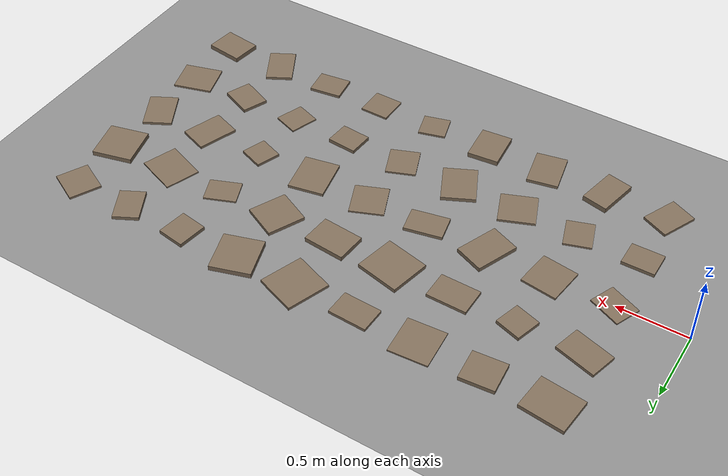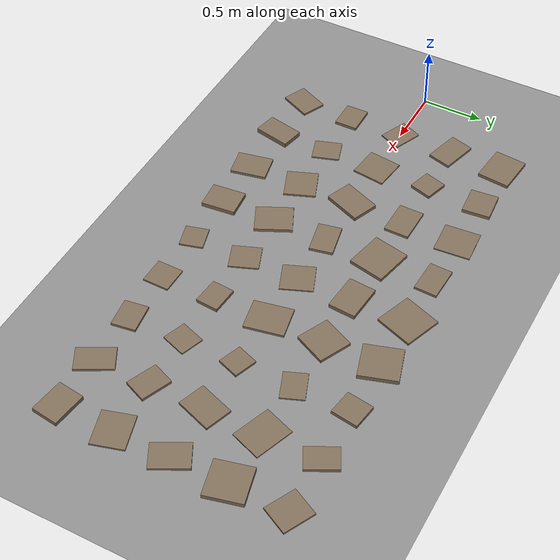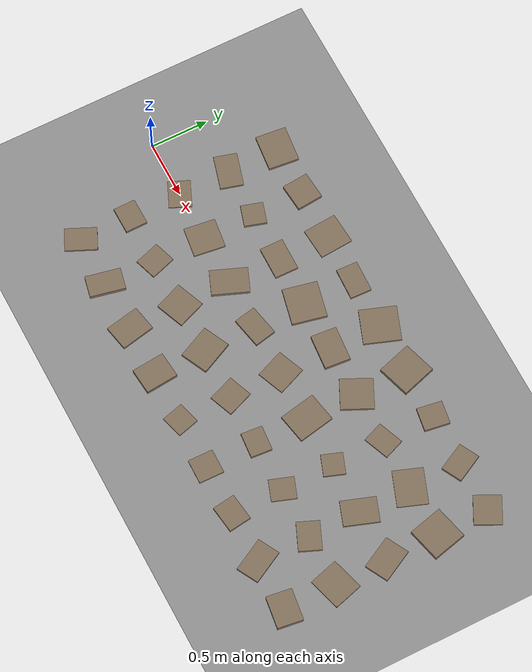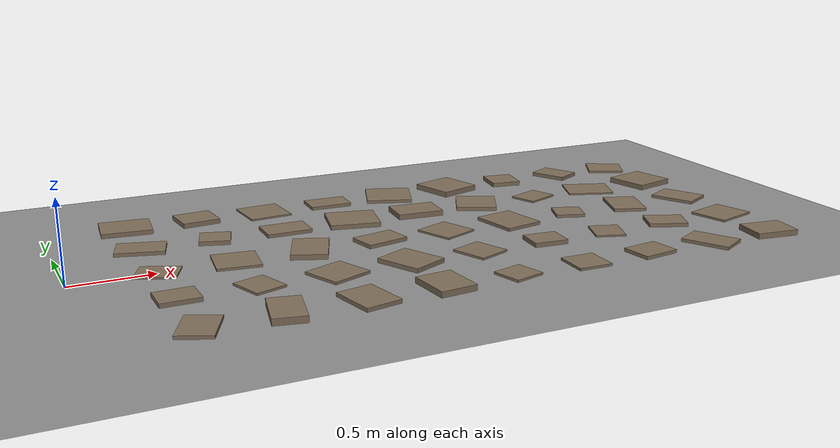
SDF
<sdf version="1.6">
 <world name="default">
  <include><uri>model://sun</uri></include>
  <model name="tracer_base_ground">
   <static>true</static>
   <link name="link">
    <collision name="collision">
     <geometry><plane><normal>0 0 1</normal><size>30 12</size></plane></geometry>
     <surface>
      <friction><ode><mu>0.8</mu><mu2>0.8</mu2><slip1>0.0</slip1><slip2>0.0</slip2></ode></friction>
      <contact>
       <ode><kp>1000000.0</kp><kd>100.0</kd><max_vel>0.01</max_vel><min_depth>0.001</min_depth></ode>
      </contact>
     </surface>
    </collision>
    <visual name="visual">
     <geometry><plane><normal>0 0 1</normal><size>30 12</size></plane></geometry>
     <material><ambient>0.45 0.45 0.45 1</ambient><diffuse>0.55 0.55 0.55 1</diffuse></material>
    </visual>
   </link>
  </model>
  <model name="rough_patch_0_0">
   <static>true</static>
   <pose>0.500 -0.900 0.0099 0 0 -0.4276</pose>
   <link name="link">
    <collision name="collision">
     <geometry><box><size>0.201 0.271 0.0197</size></box></geometry>
     <surface>
      <friction><ode><mu>0.8</mu><mu2>0.8</mu2><slip1>0.0</slip1><slip2>0.0</slip2></ode></friction>
      <contact>
       <ode><kp>1000000.0</kp><kd>100.0</kd><max_vel>0.01</max_vel><min_depth>0.001</min_depth></ode>
      </contact>
     </surface>
    </collision>
    <visual name="visual">
     <geometry><box><size>0.201 0.271 0.0197</size></box></geometry>
     <material><ambient>0.38 0.34 0.28 1</ambient><diffuse>0.50 0.43 0.35 1</diffuse></material>
    </visual>
   </link>
  </model>
  <model name="rough_patch_0_1">
   <static>true</static>
   <pose>0.500 -0.450 0.0130 0 0 0.0074</pose>
   <link name="link">
    <collision name="collision">
     <geometry><box><size>0.231 0.188 0.0261</size></box></geometry>
     <surface>
      <friction><ode><mu>0.8</mu><mu2>0.8</mu2><slip1>0.0</slip1><slip2>0.0</slip2></ode></friction>
      <contact>
       <ode><kp>1000000.0</kp><kd>100.0</kd><max_vel>0.01</max_vel><min_depth>0.001</min_depth></ode>
      </contact>
     </surface>
    </collision>
    <visual name="visual">
     <geometry><box><size>0.231 0.188 0.0261</size></box></geometry>
     <material><ambient>0.38 0.34 0.28 1</ambient><diffuse>0.50 0.43 0.35 1</diffuse></material>
    </visual>
   </link>
  </model>
  <model name="rough_patch_0_2">
   <static>true</static>
   <pose>0.500 0.000 0.0056 0 0 -0.4093</pose>
   <link name="link">
    <collision name="collision">
     <geometry><box><size>0.241 0.190 0.0111</size></box></geometry>
     <surface>
      <friction><ode><mu>0.8</mu><mu2>0.8</mu2><slip1>0.0</slip1><slip2>0.0</slip2></ode></friction>
      <contact>
       <ode><kp>1000000.0</kp><kd>100.0</kd><max_vel>0.01</max_vel><min_depth>0.001</min_depth></ode>
      </contact>
     </surface>
    </collision>
    <visual name="visual">
     <geometry><box><size>0.241 0.190 0.0111</size></box></geometry>
     <material><ambient>0.38 0.34 0.28 1</ambient><diffuse>0.50 0.43 0.35 1</diffuse></material>
    </visual>
   </link>
  </model>
  <model name="rough_patch_0_3">
   <static>true</static>
   <pose>0.500 0.450 0.0114 0 0 -0.2768</pose>
   <link name="link">
    <collision name="collision">
     <geometry><box><size>0.296 0.197 0.0227</size></box></geometry>
     <surface>
      <friction><ode><mu>0.8</mu><mu2>0.8</mu2><slip1>0.0</slip1><slip2>0.0</slip2></ode></friction>
      <contact>
       <ode><kp>1000000.0</kp><kd>100.0</kd><max_vel>0.01</max_vel><min_depth>0.001</min_depth></ode>
      </contact>
     </surface>
    </collision>
    <visual name="visual">
     <geometry><box><size>0.296 0.197 0.0227</size></box></geometry>
     <material><ambient>0.38 0.34 0.28 1</ambient><diffuse>0.50 0.43 0.35 1</diffuse></material>
    </visual>
   </link>
  </model>
  <model name="rough_patch_0_4">
   <static>true</static>
   <pose>0.500 0.900 0.0144 0 0 -0.1033</pose>
   <link name="link">
    <collision name="collision">
     <geometry><box><size>0.313 0.261 0.0288</size></box></geometry>
     <surface>
      <friction><ode><mu>0.8</mu><mu2>0.8</mu2><slip1>0.0</slip1><slip2>0.0</slip2></ode></friction>
      <contact>
       <ode><kp>1000000.0</kp><kd>100.0</kd><max_vel>0.01</max_vel><min_depth>0.001</min_depth></ode>
      </contact>
     </surface>
    </collision>
    <visual name="visual">
     <geometry><box><size>0.313 0.261 0.0288</size></box></geometry>
     <material><ambient>0.38 0.34 0.28 1</ambient><diffuse>0.50 0.43 0.35 1</diffuse></material>
    </visual>
   </link>
  </model>
  <model name="rough_patch_1_0">
   <static>true</static>
   <pose>0.950 -0.900 0.0196 0 0 -0.2104</pose>
   <link name="link">
    <collision name="collision">
     <geometry><box><size>0.187 0.300 0.0393</size></box></geometry>
     <surface>
      <friction><ode><mu>0.8</mu><mu2>0.8</mu2><slip1>0.0</slip1><slip2>0.0</slip2></ode></friction>
      <contact>
       <ode><kp>1000000.0</kp><kd>100.0</kd><max_vel>0.01</max_vel><min_depth>0.001</min_depth></ode>
      </contact>
     </surface>
    </collision>
    <visual name="visual">
     <geometry><box><size>0.187 0.300 0.0393</size></box></geometry>
     <material><ambient>0.38 0.34 0.28 1</ambient><diffuse>0.50 0.43 0.35 1</diffuse></material>
    </visual>
   </link>
  </model>
  <model name="rough_patch_1_1">
   <static>true</static>
   <pose>0.950 -0.450 0.0072 0 0 0.3161</pose>
   <link name="link">
    <collision name="collision">
     <geometry><box><size>0.196 0.223 0.0143</size></box></geometry>
     <surface>
      <friction><ode><mu>0.8</mu><mu2>0.8</mu2><slip1>0.0</slip1><slip2>0.0</slip2></ode></friction>
      <contact>
       <ode><kp>1000000.0</kp><kd>100.0</kd><max_vel>0.01</max_vel><min_depth>0.001</min_depth></ode>
      </contact>
     </surface>
    </collision>
    <visual name="visual">
     <geometry><box><size>0.196 0.223 0.0143</size></box></geometry>
     <material><ambient>0.38 0.34 0.28 1</ambient><diffuse>0.50 0.43 0.35 1</diffuse></material>
    </visual>
   </link>
  </model>
  <model name="rough_patch_1_2">
   <static>true</static>
   <pose>0.950 0.000 0.0077 0 0 -0.1276</pose>
   <link name="link">
    <collision name="collision">
     <geometry><box><size>0.261 0.269 0.0154</size></box></geometry>
     <surface>
      <friction><ode><mu>0.8</mu><mu2>0.8</mu2><slip1>0.0</slip1><slip2>0.0</slip2></ode></friction>
      <contact>
       <ode><kp>1000000.0</kp><kd>100.0</kd><max_vel>0.01</max_vel><min_depth>0.001</min_depth></ode>
      </contact>
     </surface>
    </collision>
    <visual name="visual">
     <geometry><box><size>0.261 0.269 0.0154</size></box></geometry>
     <material><ambient>0.38 0.34 0.28 1</ambient><diffuse>0.50 0.43 0.35 1</diffuse></material>
    </visual>
   </link>
  </model>
  <model name="rough_patch_1_3">
   <static>true</static>
   <pose>0.950 0.450 0.0132 0 0 -0.2940</pose>
   <link name="link">
    <collision name="collision">
     <geometry><box><size>0.189 0.188 0.0264</size></box></geometry>
     <surface>
      <friction><ode><mu>0.8</mu><mu2>0.8</mu2><slip1>0.0</slip1><slip2>0.0</slip2></ode></friction>
      <contact>
       <ode><kp>1000000.0</kp><kd>100.0</kd><max_vel>0.01</max_vel><min_depth>0.001</min_depth></ode>
      </contact>
     </surface>
    </collision>
    <visual name="visual">
     <geometry><box><size>0.189 0.188 0.0264</size></box></geometry>
     <material><ambient>0.38 0.34 0.28 1</ambient><diffuse>0.50 0.43 0.35 1</diffuse></material>
    </visual>
   </link>
  </model>
  <model name="rough_patch_1_4">
   <static>true</static>
   <pose>0.950 0.900 0.0152 0 0 0.0856</pose>
   <link name="link">
    <collision name="collision">
     <geometry><box><size>0.240 0.224 0.0304</size></box></geometry>
     <surface>
      <friction><ode><mu>0.8</mu><mu2>0.8</mu2><slip1>0.0</slip1><slip2>0.0</slip2></ode></friction>
      <contact>
       <ode><kp>1000000.0</kp><kd>100.0</kd><max_vel>0.01</max_vel><min_depth>0.001</min_depth></ode>
      </contact>
     </surface>
    </collision>
    <visual name="visual">
     <geometry><box><size>0.240 0.224 0.0304</size></box></geometry>
     <material><ambient>0.38 0.34 0.28 1</ambient><diffuse>0.50 0.43 0.35 1</diffuse></material>
    </visual>
   </link>
  </model>
  <model name="rough_patch_2_0">
   <static>true</static>
   <pose>1.400 -0.900 0.0118 0 0 0.1990</pose>
   <link name="link">
    <collision name="collision">
     <geometry><box><size>0.222 0.291 0.0236</size></box></geometry>
     <surface>
      <friction><ode><mu>0.8</mu><mu2>0.8</mu2><slip1>0.0</slip1><slip2>0.0</slip2></ode></friction>
      <contact>
       <ode><kp>1000000.0</kp><kd>100.0</kd><max_vel>0.01</max_vel><min_depth>0.001</min_depth></ode>
      </contact>
     </surface>
    </collision>
    <visual name="visual">
     <geometry><box><size>0.222 0.291 0.0236</size></box></geometry>
     <material><ambient>0.38 0.34 0.28 1</ambient><diffuse>0.50 0.43 0.35 1</diffuse></material>
    </visual>
   </link>
  </model>
  <model name="rough_patch_2_1">
   <static>true</static>
   <pose>1.400 -0.450 0.0087 0 0 0.3751</pose>
   <link name="link">
    <collision name="collision">
     <geometry><box><size>0.260 0.254 0.0173</size></box></geometry>
     <surface>
      <friction><ode><mu>0.8</mu><mu2>0.8</mu2><slip1>0.0</slip1><slip2>0.0</slip2></ode></friction>
      <contact>
       <ode><kp>1000000.0</kp><kd>100.0</kd><max_vel>0.01</max_vel><min_depth>0.001</min_depth></ode>
      </contact>
     </surface>
    </collision>
    <visual name="visual">
     <geometry><box><size>0.260 0.254 0.0173</size></box></geometry>
     <material><ambient>0.38 0.34 0.28 1</ambient><diffuse>0.50 0.43 0.35 1</diffuse></material>
    </visual>
   </link>
  </model>
  <model name="rough_patch_2_2">
   <static>true</static>
   <pose>1.400 0.000 0.0159 0 0 -0.3819</pose>
   <link name="link">
    <collision name="collision">
     <geometry><box><size>0.220 0.317 0.0319</size></box></geometry>
     <surface>
      <friction><ode><mu>0.8</mu><mu2>0.8</mu2><slip1>0.0</slip1><slip2>0.0</slip2></ode></friction>
      <contact>
       <ode><kp>1000000.0</kp><kd>100.0</kd><max_vel>0.01</max_vel><min_depth>0.001</min_depth></ode>
      </contact>
     </surface>
    </collision>
    <visual name="visual">
     <geometry><box><size>0.220 0.317 0.0319</size></box></geometry>
     <material><ambient>0.38 0.34 0.28 1</ambient><diffuse>0.50 0.43 0.35 1</diffuse></material>
    </visual>
   </link>
  </model>
  <model name="rough_patch_2_3">
   <static>true</static>
   <pose>1.400 0.450 0.0113 0 0 -0.0110</pose>
   <link name="link">
    <collision name="collision">
     <geometry><box><size>0.286 0.201 0.0225</size></box></geometry>
     <surface>
      <friction><ode><mu>0.8</mu><mu2>0.8</mu2><slip1>0.0</slip1><slip2>0.0</slip2></ode></friction>
      <contact>
       <ode><kp>1000000.0</kp><kd>100.0</kd><max_vel>0.01</max_vel><min_depth>0.001</min_depth></ode>
      </contact>
     </surface>
    </collision>
    <visual name="visual">
     <geometry><box><size>0.286 0.201 0.0225</size></box></geometry>
     <material><ambient>0.38 0.34 0.28 1</ambient><diffuse>0.50 0.43 0.35 1</diffuse></material>
    </visual>
   </link>
  </model>
  <model name="rough_patch_2_4">
   <static>true</static>
   <pose>1.400 0.900 0.0056 0 0 0.0730</pose>
   <link name="link">
    <collision name="collision">
     <geometry><box><size>0.274 0.287 0.0112</size></box></geometry>
     <surface>
      <friction><ode><mu>0.8</mu><mu2>0.8</mu2><slip1>0.0</slip1><slip2>0.0</slip2></ode></friction>
      <contact>
       <ode><kp>1000000.0</kp><kd>100.0</kd><max_vel>0.01</max_vel><min_depth>0.001</min_depth></ode>
      </contact>
     </surface>
    </collision>
    <visual name="visual">
     <geometry><box><size>0.274 0.287 0.0112</size></box></geometry>
     <material><ambient>0.38 0.34 0.28 1</ambient><diffuse>0.50 0.43 0.35 1</diffuse></material>
    </visual>
   </link>
  </model>
  <model name="rough_patch_3_0">
   <static>true</static>
   <pose>1.850 -0.900 0.0181 0 0 0.0944</pose>
   <link name="link">
    <collision name="collision">
     <geometry><box><size>0.224 0.277 0.0363</size></box></geometry>
     <surface>
      <friction><ode><mu>0.8</mu><mu2>0.8</mu2><slip1>0.0</slip1><slip2>0.0</slip2></ode></friction>
      <contact>
       <ode><kp>1000000.0</kp><kd>100.0</kd><max_vel>0.01</max_vel><min_depth>0.001</min_depth></ode>
      </contact>
     </surface>
    </collision>
    <visual name="visual">
     <geometry><box><size>0.224 0.277 0.0363</size></box></geometry>
     <material><ambient>0.38 0.34 0.28 1</ambient><diffuse>0.50 0.43 0.35 1</diffuse></material>
    </visual>
   </link>
  </model>
  <model name="rough_patch_3_1">
   <static>true</static>
   <pose>1.850 -0.450 0.0137 0 0 0.4447</pose>
   <link name="link">
    <collision name="collision">
     <geometry><box><size>0.244 0.298 0.0274</size></box></geometry>
     <surface>
      <friction><ode><mu>0.8</mu><mu2>0.8</mu2><slip1>0.0</slip1><slip2>0.0</slip2></ode></friction>
      <contact>
       <ode><kp>1000000.0</kp><kd>100.0</kd><max_vel>0.01</max_vel><min_depth>0.001</min_depth></ode>
      </contact>
     </surface>
    </collision>
    <visual name="visual">
     <geometry><box><size>0.244 0.298 0.0274</size></box></geometry>
     <material><ambient>0.38 0.34 0.28 1</ambient><diffuse>0.50 0.43 0.35 1</diffuse></material>
    </visual>
   </link>
  </model>
  <model name="rough_patch_3_2">
   <static>true</static>
   <pose>1.850 0.000 0.0121 0 0 0.2015</pose>
   <link name="link">
    <collision name="collision">
     <geometry><box><size>0.273 0.188 0.0242</size></box></geometry>
     <surface>
      <friction><ode><mu>0.8</mu><mu2>0.8</mu2><slip1>0.0</slip1><slip2>0.0</slip2></ode></friction>
      <contact>
       <ode><kp>1000000.0</kp><kd>100.0</kd><max_vel>0.01</max_vel><min_depth>0.001</min_depth></ode>
      </contact>
     </surface>
    </collision>
    <visual name="visual">
     <geometry><box><size>0.273 0.188 0.0242</size></box></geometry>
     <material><ambient>0.38 0.34 0.28 1</ambient><diffuse>0.50 0.43 0.35 1</diffuse></material>
    </visual>
   </link>
  </model>
  <model name="rough_patch_3_3">
   <static>true</static>
   <pose>1.850 0.450 0.0147 0 0 -0.2154</pose>
   <link name="link">
    <collision name="collision">
     <geometry><box><size>0.319 0.295 0.0294</size></box></geometry>
     <surface>
      <friction><ode><mu>0.8</mu><mu2>0.8</mu2><slip1>0.0</slip1><slip2>0.0</slip2></ode></friction>
      <contact>
       <ode><kp>1000000.0</kp><kd>100.0</kd><max_vel>0.01</max_vel><min_depth>0.001</min_depth></ode>
      </contact>
     </surface>
    </collision>
    <visual name="visual">
     <geometry><box><size>0.319 0.295 0.0294</size></box></geometry>
     <material><ambient>0.38 0.34 0.28 1</ambient><diffuse>0.50 0.43 0.35 1</diffuse></material>
    </visual>
   </link>
  </model>
  <model name="rough_patch_3_4">
   <static>true</static>
   <pose>1.850 0.900 0.0108 0 0 -0.0383</pose>
   <link name="link">
    <collision name="collision">
     <geometry><box><size>0.274 0.183 0.0216</size></box></geometry>
     <surface>
      <friction><ode><mu>0.8</mu><mu2>0.8</mu2><slip1>0.0</slip1><slip2>0.0</slip2></ode></friction>
      <contact>
       <ode><kp>1000000.0</kp><kd>100.0</kd><max_vel>0.01</max_vel><min_depth>0.001</min_depth></ode>
      </contact>
     </surface>
    </collision>
    <visual name="visual">
     <geometry><box><size>0.274 0.183 0.0216</size></box></geometry>
     <material><ambient>0.38 0.34 0.28 1</ambient><diffuse>0.50 0.43 0.35 1</diffuse></material>
    </visual>
   </link>
  </model>
  <model name="rough_patch_4_0">
   <static>true</static>
   <pose>2.300 -0.900 0.0075 0 0 0.2682</pose>
   <link name="link">
    <collision name="collision">
     <geometry><box><size>0.196 0.188 0.0150</size></box></geometry>
     <surface>
      <friction><ode><mu>0.8</mu><mu2>0.8</mu2><slip1>0.0</slip1><slip2>0.0</slip2></ode></friction>
      <contact>
       <ode><kp>1000000.0</kp><kd>100.0</kd><max_vel>0.01</max_vel><min_depth>0.001</min_depth></ode>
      </contact>
     </surface>
    </collision>
    <visual name="visual">
     <geometry><box><size>0.196 0.188 0.0150</size></box></geometry>
     <material><ambient>0.38 0.34 0.28 1</ambient><diffuse>0.50 0.43 0.35 1</diffuse></material>
    </visual>
   </link>
  </model>
  <model name="rough_patch_4_1">
   <static>true</static>
   <pose>2.300 -0.450 0.0069 0 0 0.3714</pose>
   <link name="link">
    <collision name="collision">
     <geometry><box><size>0.215 0.235 0.0139</size></box></geometry>
     <surface>
      <friction><ode><mu>0.8</mu><mu2>0.8</mu2><slip1>0.0</slip1><slip2>0.0</slip2></ode></friction>
      <contact>
       <ode><kp>1000000.0</kp><kd>100.0</kd><max_vel>0.01</max_vel><min_depth>0.001</min_depth></ode>
      </contact>
     </surface>
    </collision>
    <visual name="visual">
     <geometry><box><size>0.215 0.235 0.0139</size></box></geometry>
     <material><ambient>0.38 0.34 0.28 1</ambient><diffuse>0.50 0.43 0.35 1</diffuse></material>
    </visual>
   </link>
  </model>
  <model name="rough_patch_4_2">
   <static>true</static>
   <pose>2.300 0.000 0.0062 0 0 0.3834</pose>
   <link name="link">
    <collision name="collision">
     <geometry><box><size>0.243 0.257 0.0124</size></box></geometry>
     <surface>
      <friction><ode><mu>0.8</mu><mu2>0.8</mu2><slip1>0.0</slip1><slip2>0.0</slip2></ode></friction>
      <contact>
       <ode><kp>1000000.0</kp><kd>100.0</kd><max_vel>0.01</max_vel><min_depth>0.001</min_depth></ode>
      </contact>
     </surface>
    </collision>
    <visual name="visual">
     <geometry><box><size>0.243 0.257 0.0124</size></box></geometry>
     <material><ambient>0.38 0.34 0.28 1</ambient><diffuse>0.50 0.43 0.35 1</diffuse></material>
    </visual>
   </link>
  </model>
  <model name="rough_patch_4_3">
   <static>true</static>
   <pose>2.300 0.450 0.0173 0 0 -0.0847</pose>
   <link name="link">
    <collision name="collision">
     <geometry><box><size>0.301 0.219 0.0346</size></box></geometry>
     <surface>
      <friction><ode><mu>0.8</mu><mu2>0.8</mu2><slip1>0.0</slip1><slip2>0.0</slip2></ode></friction>
      <contact>
       <ode><kp>1000000.0</kp><kd>100.0</kd><max_vel>0.01</max_vel><min_depth>0.001</min_depth></ode>
      </contact>
     </surface>
    </collision>
    <visual name="visual">
     <geometry><box><size>0.301 0.219 0.0346</size></box></geometry>
     <material><ambient>0.38 0.34 0.28 1</ambient><diffuse>0.50 0.43 0.35 1</diffuse></material>
    </visual>
   </link>
  </model>
  <model name="rough_patch_4_4">
   <static>true</static>
   <pose>2.300 0.900 0.0104 0 0 -0.3491</pose>
   <link name="link">
    <collision name="collision">
     <geometry><box><size>0.304 0.314 0.0208</size></box></geometry>
     <surface>
      <friction><ode><mu>0.8</mu><mu2>0.8</mu2><slip1>0.0</slip1><slip2>0.0</slip2></ode></friction>
      <contact>
       <ode><kp>1000000.0</kp><kd>100.0</kd><max_vel>0.01</max_vel><min_depth>0.001</min_depth></ode>
      </contact>
     </surface>
    </collision>
    <visual name="visual">
     <geometry><box><size>0.304 0.314 0.0208</size></box></geometry>
     <material><ambient>0.38 0.34 0.28 1</ambient><diffuse>0.50 0.43 0.35 1</diffuse></material>
    </visual>
   </link>
  </model>
  <model name="rough_patch_5_0">
   <static>true</static>
   <pose>2.750 -0.900 0.0076 0 0 -0.0150</pose>
   <link name="link">
    <collision name="collision">
     <geometry><box><size>0.212 0.213 0.0153</size></box></geometry>
     <surface>
      <friction><ode><mu>0.8</mu><mu2>0.8</mu2><slip1>0.0</slip1><slip2>0.0</slip2></ode></friction>
      <contact>
       <ode><kp>1000000.0</kp><kd>100.0</kd><max_vel>0.01</max_vel><min_depth>0.001</min_depth></ode>
      </contact>
     </surface>
    </collision>
    <visual name="visual">
     <geometry><box><size>0.212 0.213 0.0153</size></box></geometry>
     <material><ambient>0.38 0.34 0.28 1</ambient><diffuse>0.50 0.43 0.35 1</diffuse></material>
    </visual>
   </link>
  </model>
  <model name="rough_patch_5_1">
   <static>true</static>
   <pose>2.750 -0.450 0.0138 0 0 -0.0811</pose>
   <link name="link">
    <collision name="collision">
     <geometry><box><size>0.217 0.181 0.0277</size></box></geometry>
     <surface>
      <friction><ode><mu>0.8</mu><mu2>0.8</mu2><slip1>0.0</slip1><slip2>0.0</slip2></ode></friction>
      <contact>
       <ode><kp>1000000.0</kp><kd>100.0</kd><max_vel>0.01</max_vel><min_depth>0.001</min_depth></ode>
      </contact>
     </surface>
    </collision>
    <visual name="visual">
     <geometry><box><size>0.217 0.181 0.0277</size></box></geometry>
     <material><ambient>0.38 0.34 0.28 1</ambient><diffuse>0.50 0.43 0.35 1</diffuse></material>
    </visual>
   </link>
  </model>
  <model name="rough_patch_5_2">
   <static>true</static>
   <pose>2.750 0.000 0.0105 0 0 0.1905</pose>
   <link name="link">
    <collision name="collision">
     <geometry><box><size>0.259 0.313 0.0211</size></box></geometry>
     <surface>
      <friction><ode><mu>0.8</mu><mu2>0.8</mu2><slip1>0.0</slip1><slip2>0.0</slip2></ode></friction>
      <contact>
       <ode><kp>1000000.0</kp><kd>100.0</kd><max_vel>0.01</max_vel><min_depth>0.001</min_depth></ode>
      </contact>
     </surface>
    </collision>
    <visual name="visual">
     <geometry><box><size>0.259 0.313 0.0211</size></box></geometry>
     <material><ambient>0.38 0.34 0.28 1</ambient><diffuse>0.50 0.43 0.35 1</diffuse></material>
    </visual>
   </link>
  </model>
  <model name="rough_patch_5_3">
   <static>true</static>
   <pose>2.750 0.450 0.0127 0 0 -0.4460</pose>
   <link name="link">
    <collision name="collision">
     <geometry><box><size>0.266 0.275 0.0255</size></box></geometry>
     <surface>
      <friction><ode><mu>0.8</mu><mu2>0.8</mu2><slip1>0.0</slip1><slip2>0.0</slip2></ode></friction>
      <contact>
       <ode><kp>1000000.0</kp><kd>100.0</kd><max_vel>0.01</max_vel><min_depth>0.001</min_depth></ode>
      </contact>
     </surface>
    </collision>
    <visual name="visual">
     <geometry><box><size>0.266 0.275 0.0255</size></box></geometry>
     <material><ambient>0.38 0.34 0.28 1</ambient><diffuse>0.50 0.43 0.35 1</diffuse></material>
    </visual>
   </link>
  </model>
  <model name="rough_patch_5_4">
   <static>true</static>
   <pose>2.750 0.900 0.0185 0 0 0.2979</pose>
   <link name="link">
    <collision name="collision">
     <geometry><box><size>0.289 0.302 0.0370</size></box></geometry>
     <surface>
      <friction><ode><mu>0.8</mu><mu2>0.8</mu2><slip1>0.0</slip1><slip2>0.0</slip2></ode></friction>
      <contact>
       <ode><kp>1000000.0</kp><kd>100.0</kd><max_vel>0.01</max_vel><min_depth>0.001</min_depth></ode>
      </contact>
     </surface>
    </collision>
    <visual name="visual">
     <geometry><box><size>0.289 0.302 0.0370</size></box></geometry>
     <material><ambient>0.38 0.34 0.28 1</ambient><diffuse>0.50 0.43 0.35 1</diffuse></material>
    </visual>
   </link>
  </model>
  <model name="rough_patch_6_0">
   <static>true</static>
   <pose>3.200 -0.900 0.0109 0 0 0.1343</pose>
   <link name="link">
    <collision name="collision">
     <geometry><box><size>0.236 0.194 0.0218</size></box></geometry>
     <surface>
      <friction><ode><mu>0.8</mu><mu2>0.8</mu2><slip1>0.0</slip1><slip2>0.0</slip2></ode></friction>
      <contact>
       <ode><kp>1000000.0</kp><kd>100.0</kd><max_vel>0.01</max_vel><min_depth>0.001</min_depth></ode>
      </contact>
     </surface>
    </collision>
    <visual name="visual">
     <geometry><box><size>0.236 0.194 0.0218</size></box></geometry>
     <material><ambient>0.38 0.34 0.28 1</ambient><diffuse>0.50 0.43 0.35 1</diffuse></material>
    </visual>
   </link>
  </model>
  <model name="rough_patch_6_1">
   <static>true</static>
   <pose>3.200 -0.450 0.0059 0 0 -0.3377</pose>
   <link name="link">
    <collision name="collision">
     <geometry><box><size>0.189 0.209 0.0119</size></box></geometry>
     <surface>
      <friction><ode><mu>0.8</mu><mu2>0.8</mu2><slip1>0.0</slip1><slip2>0.0</slip2></ode></friction>
      <contact>
       <ode><kp>1000000.0</kp><kd>100.0</kd><max_vel>0.01</max_vel><min_depth>0.001</min_depth></ode>
      </contact>
     </surface>
    </collision>
    <visual name="visual">
     <geometry><box><size>0.189 0.209 0.0119</size></box></geometry>
     <material><ambient>0.38 0.34 0.28 1</ambient><diffuse>0.50 0.43 0.35 1</diffuse></material>
    </visual>
   </link>
  </model>
  <model name="rough_patch_6_2">
   <static>true</static>
   <pose>3.200 0.000 0.0101 0 0 -0.3487</pose>
   <link name="link">
    <collision name="collision">
     <geometry><box><size>0.187 0.180 0.0202</size></box></geometry>
     <surface>
      <friction><ode><mu>0.8</mu><mu2>0.8</mu2><slip1>0.0</slip1><slip2>0.0</slip2></ode></friction>
      <contact>
       <ode><kp>1000000.0</kp><kd>100.0</kd><max_vel>0.01</max_vel><min_depth>0.001</min_depth></ode>
      </contact>
     </surface>
    </collision>
    <visual name="visual">
     <geometry><box><size>0.187 0.180 0.0202</size></box></geometry>
     <material><ambient>0.38 0.34 0.28 1</ambient><diffuse>0.50 0.43 0.35 1</diffuse></material>
    </visual>
   </link>
  </model>
  <model name="rough_patch_6_3">
   <static>true</static>
   <pose>3.200 0.450 0.0065 0 0 0.3743</pose>
   <link name="link">
    <collision name="collision">
     <geometry><box><size>0.231 0.184 0.0130</size></box></geometry>
     <surface>
      <friction><ode><mu>0.8</mu><mu2>0.8</mu2><slip1>0.0</slip1><slip2>0.0</slip2></ode></friction>
      <contact>
       <ode><kp>1000000.0</kp><kd>100.0</kd><max_vel>0.01</max_vel><min_depth>0.001</min_depth></ode>
      </contact>
     </surface>
    </collision>
    <visual name="visual">
     <geometry><box><size>0.231 0.184 0.0130</size></box></geometry>
     <material><ambient>0.38 0.34 0.28 1</ambient><diffuse>0.50 0.43 0.35 1</diffuse></material>
    </visual>
   </link>
  </model>
  <model name="rough_patch_6_4">
   <static>true</static>
   <pose>3.200 0.900 0.0142 0 0 -0.1526</pose>
   <link name="link">
    <collision name="collision">
     <geometry><box><size>0.201 0.215 0.0284</size></box></geometry>
     <surface>
      <friction><ode><mu>0.8</mu><mu2>0.8</mu2><slip1>0.0</slip1><slip2>0.0</slip2></ode></friction>
      <contact>
       <ode><kp>1000000.0</kp><kd>100.0</kd><max_vel>0.01</max_vel><min_depth>0.001</min_depth></ode>
      </contact>
     </surface>
    </collision>
    <visual name="visual">
     <geometry><box><size>0.201 0.215 0.0284</size></box></geometry>
     <material><ambient>0.38 0.34 0.28 1</ambient><diffuse>0.50 0.43 0.35 1</diffuse></material>
    </visual>
   </link>
  </model>
  <model name="rough_patch_7_0">
   <static>true</static>
   <pose>3.650 -0.900 0.0105 0 0 0.4931</pose>
   <link name="link">
    <collision name="collision">
     <geometry><box><size>0.197 0.299 0.0209</size></box></geometry>
     <surface>
      <friction><ode><mu>0.8</mu><mu2>0.8</mu2><slip1>0.0</slip1><slip2>0.0</slip2></ode></friction>
      <contact>
       <ode><kp>1000000.0</kp><kd>100.0</kd><max_vel>0.01</max_vel><min_depth>0.001</min_depth></ode>
      </contact>
     </surface>
    </collision>
    <visual name="visual">
     <geometry><box><size>0.197 0.299 0.0209</size></box></geometry>
     <material><ambient>0.38 0.34 0.28 1</ambient><diffuse>0.50 0.43 0.35 1</diffuse></material>
    </visual>
   </link>
  </model>
  <model name="rough_patch_7_1">
   <static>true</static>
   <pose>3.650 -0.450 0.0120 0 0 -0.3978</pose>
   <link name="link">
    <collision name="collision">
     <geometry><box><size>0.248 0.192 0.0240</size></box></geometry>
     <surface>
      <friction><ode><mu>0.8</mu><mu2>0.8</mu2><slip1>0.0</slip1><slip2>0.0</slip2></ode></friction>
      <contact>
       <ode><kp>1000000.0</kp><kd>100.0</kd><max_vel>0.01</max_vel><min_depth>0.001</min_depth></ode>
      </contact>
     </surface>
    </collision>
    <visual name="visual">
     <geometry><box><size>0.248 0.192 0.0240</size></box></geometry>
     <material><ambient>0.38 0.34 0.28 1</ambient><diffuse>0.50 0.43 0.35 1</diffuse></material>
    </visual>
   </link>
  </model>
  <model name="rough_patch_7_2">
   <static>true</static>
   <pose>3.650 0.000 0.0101 0 0 -0.3386</pose>
   <link name="link">
    <collision name="collision">
     <geometry><box><size>0.217 0.296 0.0203</size></box></geometry>
     <surface>
      <friction><ode><mu>0.8</mu><mu2>0.8</mu2><slip1>0.0</slip1><slip2>0.0</slip2></ode></friction>
      <contact>
       <ode><kp>1000000.0</kp><kd>100.0</kd><max_vel>0.01</max_vel><min_depth>0.001</min_depth></ode>
      </contact>
     </surface>
    </collision>
    <visual name="visual">
     <geometry><box><size>0.217 0.296 0.0203</size></box></geometry>
     <material><ambient>0.38 0.34 0.28 1</ambient><diffuse>0.50 0.43 0.35 1</diffuse></material>
    </visual>
   </link>
  </model>
  <model name="rough_patch_7_3">
   <static>true</static>
   <pose>3.650 0.450 0.0053 0 0 -0.3534</pose>
   <link name="link">
    <collision name="collision">
     <geometry><box><size>0.313 0.254 0.0107</size></box></geometry>
     <surface>
      <friction><ode><mu>0.8</mu><mu2>0.8</mu2><slip1>0.0</slip1><slip2>0.0</slip2></ode></friction>
      <contact>
       <ode><kp>1000000.0</kp><kd>100.0</kd><max_vel>0.01</max_vel><min_depth>0.001</min_depth></ode>
      </contact>
     </surface>
    </collision>
    <visual name="visual">
     <geometry><box><size>0.313 0.254 0.0107</size></box></geometry>
     <material><ambient>0.38 0.34 0.28 1</ambient><diffuse>0.50 0.43 0.35 1</diffuse></material>
    </visual>
   </link>
  </model>
  <model name="rough_patch_7_4">
   <static>true</static>
   <pose>3.650 0.900 0.0131 0 0 0.4785</pose>
   <link name="link">
    <collision name="collision">
     <geometry><box><size>0.184 0.254 0.0263</size></box></geometry>
     <surface>
      <friction><ode><mu>0.8</mu><mu2>0.8</mu2><slip1>0.0</slip1><slip2>0.0</slip2></ode></friction>
      <contact>
       <ode><kp>1000000.0</kp><kd>100.0</kd><max_vel>0.01</max_vel><min_depth>0.001</min_depth></ode>
      </contact>
     </surface>
    </collision>
    <visual name="visual">
     <geometry><box><size>0.184 0.254 0.0263</size></box></geometry>
     <material><ambient>0.38 0.34 0.28 1</ambient><diffuse>0.50 0.43 0.35 1</diffuse></material>
    </visual>
   </link>
  </model>
  <model name="rough_patch_8_0">
   <static>true</static>
   <pose>4.100 -0.900 0.0179 0 0 -0.1333</pose>
   <link name="link">
    <collision name="collision">
     <geometry><box><size>0.277 0.217 0.0359</size></box></geometry>
     <surface>
      <friction><ode><mu>0.8</mu><mu2>0.8</mu2><slip1>0.0</slip1><slip2>0.0</slip2></ode></friction>
      <contact>
       <ode><kp>1000000.0</kp><kd>100.0</kd><max_vel>0.01</max_vel><min_depth>0.001</min_depth></ode>
      </contact>
     </surface>
    </collision>
    <visual name="visual">
     <geometry><box><size>0.277 0.217 0.0359</size></box></geometry>
     <material><ambient>0.38 0.34 0.28 1</ambient><diffuse>0.50 0.43 0.35 1</diffuse></material>
    </visual>
   </link>
  </model>
  <model name="rough_patch_8_1">
   <static>true</static>
   <pose>4.100 -0.450 0.0075 0 0 0.2791</pose>
   <link name="link">
    <collision name="collision">
     <geometry><box><size>0.288 0.255 0.0150</size></box></geometry>
     <surface>
      <friction><ode><mu>0.8</mu><mu2>0.8</mu2><slip1>0.0</slip1><slip2>0.0</slip2></ode></friction>
      <contact>
       <ode><kp>1000000.0</kp><kd>100.0</kd><max_vel>0.01</max_vel><min_depth>0.001</min_depth></ode>
      </contact>
     </surface>
    </collision>
    <visual name="visual">
     <geometry><box><size>0.288 0.255 0.0150</size></box></geometry>
     <material><ambient>0.38 0.34 0.28 1</ambient><diffuse>0.50 0.43 0.35 1</diffuse></material>
    </visual>
   </link>
  </model>
  <model name="rough_patch_8_2">
   <static>true</static>
   <pose>4.100 0.000 0.0099 0 0 0.4849</pose>
   <link name="link">
    <collision name="collision">
     <geometry><box><size>0.211 0.294 0.0199</size></box></geometry>
     <surface>
      <friction><ode><mu>0.8</mu><mu2>0.8</mu2><slip1>0.0</slip1><slip2>0.0</slip2></ode></friction>
      <contact>
       <ode><kp>1000000.0</kp><kd>100.0</kd><max_vel>0.01</max_vel><min_depth>0.001</min_depth></ode>
      </contact>
     </surface>
    </collision>
    <visual name="visual">
     <geometry><box><size>0.211 0.294 0.0199</size></box></geometry>
     <material><ambient>0.38 0.34 0.28 1</ambient><diffuse>0.50 0.43 0.35 1</diffuse></material>
    </visual>
   </link>
  </model>
  <model name="rough_patch_8_3">
   <static>true</static>
   <pose>4.100 0.450 0.0178 0 0 0.2399</pose>
   <link name="link">
    <collision name="collision">
     <geometry><box><size>0.293 0.295 0.0356</size></box></geometry>
     <surface>
      <friction><ode><mu>0.8</mu><mu2>0.8</mu2><slip1>0.0</slip1><slip2>0.0</slip2></ode></friction>
      <contact>
       <ode><kp>1000000.0</kp><kd>100.0</kd><max_vel>0.01</max_vel><min_depth>0.001</min_depth></ode>
      </contact>
     </surface>
    </collision>
    <visual name="visual">
     <geometry><box><size>0.293 0.295 0.0356</size></box></geometry>
     <material><ambient>0.38 0.34 0.28 1</ambient><diffuse>0.50 0.43 0.35 1</diffuse></material>
    </visual>
   </link>
  </model>
  <model name="rough_patch_8_4">
   <static>true</static>
   <pose>4.100 0.900 0.0084 0 0 -0.4710</pose>
   <link name="link">
    <collision name="collision">
     <geometry><box><size>0.252 0.230 0.0168</size></box></geometry>
     <surface>
      <friction><ode><mu>0.8</mu><mu2>0.8</mu2><slip1>0.0</slip1><slip2>0.0</slip2></ode></friction>
      <contact>
       <ode><kp>1000000.0</kp><kd>100.0</kd><max_vel>0.01</max_vel><min_depth>0.001</min_depth></ode>
      </contact>
     </surface>
    </collision>
    <visual name="visual">
     <geometry><box><size>0.252 0.230 0.0168</size></box></geometry>
     <material><ambient>0.38 0.34 0.28 1</ambient><diffuse>0.50 0.43 0.35 1</diffuse></material>
    </visual>
   </link>
  </model>
 </world>
</sdf>
